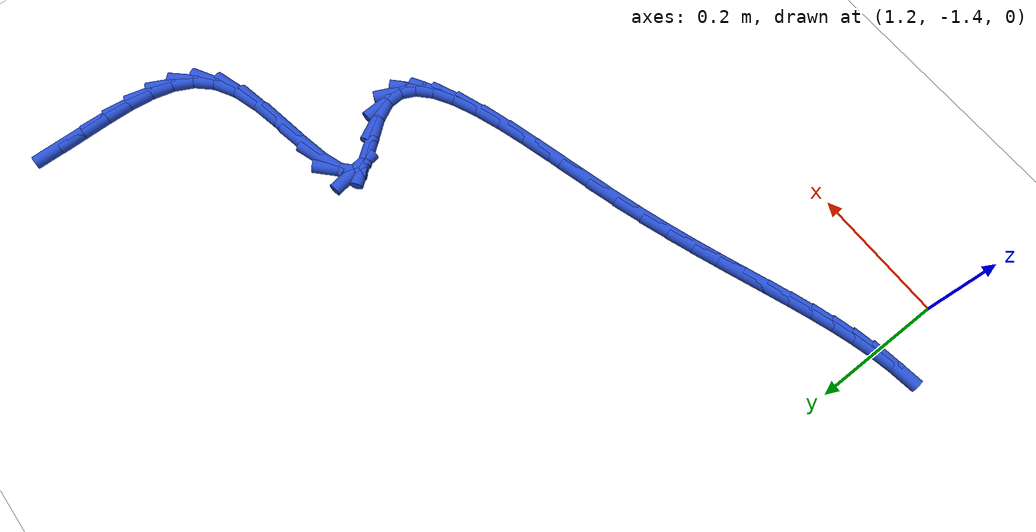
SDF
<sdf version="1.6">
 <world name="default">
  <model name="ground_plane">
   <static>1</static>
   <link name="link">
    <collision name="collision">
     <geometry><plane><normal>0 0 1</normal><size>100 100</size></plane></geometry>
     <surface><friction><ode><mu>100</mu><mu2>50</mu2></ode></friction></surface>
    </collision>
    <visual name="visual">
     <cast_shadows>0</cast_shadows>
     <geometry><plane><normal>0 0 1</normal><size>100 100</size></plane></geometry>
     <material>
      <script><uri>file://media/materials/scripts/gazebo.material</uri><name>Gazebo/WhiteGlow</name></script>
     </material>
    </visual>
   </link>
  </model>
  <model name="line">
   <link name="link_143">
    <pose>2.1452054644386993 -0.5556848720002441 0.01 0 1.57 -1.5676924518721604</pose>
    <collision name="collision">
     <geometry><cylinder><radius>0.01</radius><length>0.08</length></cylinder></geometry>
    </collision>
    <visual name="visual">
     <material>
      <script><name>Gazebo/Blue</name><uri>file://media/materials/scripts/gazebo.material</uri></script>
     </material>
     <geometry><cylinder><radius>0.01</radius><length>0.08</length></cylinder></geometry>
    </visual>
   </link>
   <link name="link_144">
    <pose>2.145331427552419 -0.5962672770080758 0.01 0 1.57 -1.5576313971870508</pose>
    <collision name="collision">
     <geometry><cylinder><radius>0.01</radius><length>0.08</length></cylinder></geometry>
    </collision>
    <visual name="visual">
     <material>
      <script><name>Gazebo/Blue</name><uri>file://media/materials/scripts/gazebo.material</uri></script>
     </material>
     <geometry><cylinder><radius>0.01</radius><length>0.08</length></cylinder></geometry>
    </visual>
   </link>
   <link name="link_145">
    <pose>2.1458559472950824 -0.6361071740293356 0.01 0 1.57 1.552144078767067</pose>
    <collision name="collision">
     <geometry><cylinder><radius>0.01</radius><length>0.08</length></cylinder></geometry>
    </collision>
    <visual name="visual">
     <material>
      <script><name>Gazebo/Blue</name><uri>file://media/materials/scripts/gazebo.material</uri></script>
     </material>
     <geometry><cylinder><radius>0.01</radius><length>0.08</length></cylinder></geometry>
    </visual>
   </link>
   <link name="link_146">
    <pose>2.145141589662102 -0.6744014743627922 0.01 0 1.57 1.4712348913628255</pose>
    <collision name="collision">
     <geometry><cylinder><radius>0.01</radius><length>0.08</length></cylinder></geometry>
    </collision>
    <visual name="visual">
     <material>
      <script><name>Gazebo/Blue</name><uri>file://media/materials/scripts/gazebo.material</uri></script>
     </material>
     <geometry><cylinder><radius>0.01</radius><length>0.08</length></cylinder></geometry>
    </visual>
   </link>
   <link name="link_147">
    <pose>2.141550920648893 -0.7103470893072168 0.01 0 1.57 1.328518575122831</pose>
    <collision name="collision">
     <geometry><cylinder><radius>0.01</radius><length>0.08</length></cylinder></geometry>
    </collision>
    <visual name="visual">
     <material>
      <script><name>Gazebo/Blue</name><uri>file://media/materials/scripts/gazebo.material</uri></script>
     </material>
     <geometry><cylinder><radius>0.01</radius><length>0.08</length></cylinder></geometry>
    </visual>
   </link>
   <link name="link_148">
    <pose>2.1334465062508694 -0.7431409301613764 0.01 0 1.57 1.1117055375172582</pose>
    <collision name="collision">
     <geometry><cylinder><radius>0.01</radius><length>0.08</length></cylinder></geometry>
    </collision>
    <visual name="visual">
     <material>
      <script><name>Gazebo/Blue</name><uri>file://media/materials/scripts/gazebo.material</uri></script>
     </material>
     <geometry><cylinder><radius>0.01</radius><length>0.08</length></cylinder></geometry>
    </visual>
   </link>
   <link name="link_149">
    <pose>2.119190912463445 -0.7719799082240418 0.01 0 1.57 0.8295279565214816</pose>
    <collision name="collision">
     <geometry><cylinder><radius>0.01</radius><length>0.08</length></cylinder></geometry>
    </collision>
    <visual name="visual">
     <material>
      <script><name>Gazebo/Blue</name><uri>file://media/materials/scripts/gazebo.material</uri></script>
     </material>
     <geometry><cylinder><radius>0.01</radius><length>0.08</length></cylinder></geometry>
    </visual>
   </link>
   <link name="link_150">
    <pose>2.097146705282034 -0.7960609347939829 0.01 0 1.57 0.5326238559644626</pose>
    <collision name="collision">
     <geometry><cylinder><radius>0.01</radius><length>0.08</length></cylinder></geometry>
    </collision>
    <visual name="visual">
     <material>
      <script><name>Gazebo/Blue</name><uri>file://media/materials/scripts/gazebo.material</uri></script>
     </material>
     <geometry><cylinder><radius>0.01</radius><length>0.08</length></cylinder></geometry>
    </visual>
   </link>
   <link name="link_151">
    <pose>2.065705797096419 -0.8145936860053105 0.01 0 1.57 0.3161960315604046</pose>
    <collision name="collision">
     <geometry><cylinder><radius>0.01</radius><length>0.08</length></cylinder></geometry>
    </collision>
    <visual name="visual">
     <material>
      <script><name>Gazebo/Blue</name><uri>file://media/materials/scripts/gazebo.material</uri></script>
     </material>
     <geometry><cylinder><radius>0.01</radius><length>0.08</length></cylinder></geometry>
    </visual>
   </link>
   <link name="link_152">
    <pose>2.0254813773221056 -0.8277540294474061 0.01 0 1.57 0.21152568492663076</pose>
    <collision name="collision">
     <geometry><cylinder><radius>0.01</radius><length>0.08</length></cylinder></geometry>
    </collision>
    <visual name="visual">
     <material>
      <script><name>Gazebo/Blue</name><uri>file://media/materials/scripts/gazebo.material</uri></script>
     </material>
     <geometry><cylinder><radius>0.01</radius><length>0.08</length></cylinder></geometry>
    </visual>
   </link>
   <link name="link_153">
    <pose>1.9808242847953934 -0.8373436024319085 0.01 0 1.57 0.17783030648084885</pose>
    <collision name="collision">
     <geometry><cylinder><radius>0.01</radius><length>0.08</length></cylinder></geometry>
    </collision>
    <visual name="visual">
     <material>
      <script><name>Gazebo/Blue</name><uri>file://media/materials/scripts/gazebo.material</uri></script>
     </material>
     <geometry><cylinder><radius>0.01</radius><length>0.08</length></cylinder></geometry>
    </visual>
   </link>
   <link name="link_154">
    <pose>1.9364439673050313 -0.8453200268242196 0.01 0 1.57 0.20816224838742683</pose>
    <collision name="collision">
     <geometry><cylinder><radius>0.01</radius><length>0.08</length></cylinder></geometry>
    </collision>
    <visual name="visual">
     <material>
      <script><name>Gazebo/Blue</name><uri>file://media/materials/scripts/gazebo.material</uri></script>
     </material>
     <geometry><cylinder><radius>0.01</radius><length>0.08</length></cylinder></geometry>
    </visual>
   </link>
   <link name="link_155">
    <pose>1.8970498726397707 -0.853640924489742 0.01 0 1.57 0.3435139861904821</pose>
    <collision name="collision">
     <geometry><cylinder><radius>0.01</radius><length>0.08</length></cylinder></geometry>
    </collision>
    <visual name="visual">
     <material>
      <script><name>Gazebo/Blue</name><uri>file://media/materials/scripts/gazebo.material</uri></script>
     </material>
     <geometry><cylinder><radius>0.01</radius><length>0.08</length></cylinder></geometry>
    </visual>
   </link>
   <link name="link_156">
    <pose>1.8673514485883655 -0.8642639172938782 0.01 0 1.57 0.7717923079617992</pose>
    <collision name="collision">
     <geometry><cylinder><radius>0.01</radius><length>0.08</length></cylinder></geometry>
    </collision>
    <visual name="visual">
     <material>
      <script><name>Gazebo/Blue</name><uri>file://media/materials/scripts/gazebo.material</uri></script>
     </material>
     <geometry><cylinder><radius>0.01</radius><length>0.08</length></cylinder></geometry>
    </visual>
   </link>
   <link name="link_157">
    <pose>1.8520581429395646 -0.8791466271020301 0.01 0 1.57 -1.3963980427650922</pose>
    <collision name="collision">
     <geometry><cylinder><radius>0.01</radius><length>0.08</length></cylinder></geometry>
    </collision>
    <visual name="visual">
     <material>
      <script><name>Gazebo/Blue</name><uri>file://media/materials/scripts/gazebo.material</uri></script>
     </material>
     <geometry><cylinder><radius>0.01</radius><length>0.08</length></cylinder></geometry>
    </visual>
   </link>
   <link name="link_158">
    <pose>1.855769472851111 -0.9002112093164588 0.01 0 1.57 -0.9222633837119028</pose>
    <collision name="collision">
     <geometry><cylinder><radius>0.01</radius><length>0.08</length></cylinder></geometry>
    </collision>
    <visual name="visual">
     <material>
      <script><name>Gazebo/Blue</name><uri>file://media/materials/scripts/gazebo.material</uri></script>
     </material>
     <geometry><cylinder><radius>0.01</radius><length>0.08</length></cylinder></geometry>
    </visual>
   </link>
   <link name="link_159">
    <pose>1.876190274886578 -0.9271554171603377 0.01 0 1.57 -0.8803049278841956</pose>
    <collision name="collision">
     <geometry><cylinder><radius>0.01</radius><length>0.08</length></cylinder></geometry>
    </collision>
    <visual name="visual">
     <material>
      <script><name>Gazebo/Blue</name><uri>file://media/materials/scripts/gazebo.material</uri></script>
     </material>
     <geometry><cylinder><radius>0.01</radius><length>0.08</length></cylinder></geometry>
    </visual>
   </link>
   <link name="link_160">
    <pose>1.9001631596155057 -0.9561725689753596 0.01 0 1.57 -1.082648267925943</pose>
    <collision name="collision">
     <geometry><cylinder><radius>0.01</radius><length>0.08</length></cylinder></geometry>
    </collision>
    <visual name="visual">
     <material>
      <script><name>Gazebo/Blue</name><uri>file://media/materials/scripts/gazebo.material</uri></script>
     </material>
     <geometry><cylinder><radius>0.01</radius><length>0.08</length></cylinder></geometry>
    </visual>
   </link>
   <link name="link_161">
    <pose>1.914649321750967 -0.9834528775230519 0.01 0 1.57 -1.5097833264019866</pose>
    <collision name="collision">
     <geometry><cylinder><radius>0.01</radius><length>0.08</length></cylinder></geometry>
    </collision>
    <visual name="visual">
     <material>
      <script><name>Gazebo/Blue</name><uri>file://media/materials/scripts/gazebo.material</uri></script>
     </material>
     <geometry><cylinder><radius>0.01</radius><length>0.08</length></cylinder></geometry>
    </visual>
   </link>
   <link name="link_162">
    <pose>1.9161424485824505 -1.0078947767487512 0.01 0 1.57 1.142109847355386</pose>
    <collision name="collision">
     <geometry><cylinder><radius>0.01</radius><length>0.08</length></cylinder></geometry>
    </collision>
    <visual name="visual">
     <material>
      <script><name>Gazebo/Blue</name><uri>file://media/materials/scripts/gazebo.material</uri></script>
     </material>
     <geometry><cylinder><radius>0.01</radius><length>0.08</length></cylinder></geometry>
    </visual>
   </link>
   <link name="link_163">
    <pose>1.9061246845527287 -1.0298139422298993 0.01 0 1.57 0.7783927689083727</pose>
    <collision name="collision">
     <geometry><cylinder><radius>0.01</radius><length>0.08</length></cylinder></geometry>
    </collision>
    <visual name="visual">
     <material>
      <script><name>Gazebo/Blue</name><uri>file://media/materials/scripts/gazebo.material</uri></script>
     </material>
     <geometry><cylinder><radius>0.01</radius><length>0.08</length></cylinder></geometry>
    </visual>
   </link>
   <link name="link_164">
    <pose>1.8861218565821913 -1.0495384599193263 0.01 0 1.57 0.5603448838079026</pose>
    <collision name="collision">
     <geometry><cylinder><radius>0.01</radius><length>0.08</length></cylinder></geometry>
    </collision>
    <visual name="visual">
     <material>
      <script><name>Gazebo/Blue</name><uri>file://media/materials/scripts/gazebo.material</uri></script>
     </material>
     <geometry><cylinder><radius>0.01</radius><length>0.08</length></cylinder></geometry>
    </visual>
   </link>
   <link name="link_165">
    <pose>1.857659791591229 -1.0673964157698614 0.01 0 1.57 0.4320142484201723</pose>
    <collision name="collision">
     <geometry><cylinder><radius>0.01</radius><length>0.08</length></cylinder></geometry>
    </collision>
    <visual name="visual">
     <material>
      <script><name>Gazebo/Blue</name><uri>file://media/materials/scripts/gazebo.material</uri></script>
     </material>
     <geometry><cylinder><radius>0.01</radius><length>0.08</length></cylinder></geometry>
    </visual>
   </link>
   <link name="link_166">
    <pose>1.8222643165002306 -1.0837158957343345 0.01 0 1.57 0.3546376813326017</pose>
    <collision name="collision">
     <geometry><cylinder><radius>0.01</radius><length>0.08</length></cylinder></geometry>
    </collision>
    <visual name="visual">
     <material>
      <script><name>Gazebo/Blue</name><uri>file://media/materials/scripts/gazebo.material</uri></script>
     </material>
     <geometry><cylinder><radius>0.01</radius><length>0.08</length></cylinder></geometry>
    </visual>
   </link>
   <link name="link_167">
    <pose>1.7814612582295875 -1.098824985765575 0.01 0 1.57 0.3082334403216166</pose>
    <collision name="collision">
     <geometry><cylinder><radius>0.01</radius><length>0.08</length></cylinder></geometry>
    </collision>
    <visual name="visual">
     <material>
      <script><name>Gazebo/Blue</name><uri>file://media/materials/scripts/gazebo.material</uri></script>
     </material>
     <geometry><cylinder><radius>0.01</radius><length>0.08</length></cylinder></geometry>
    </visual>
   </link>
   <link name="link_168">
    <pose>1.7367764436996898 -1.113051771816413 0.01 0 1.57 0.2828603397765931</pose>
    <collision name="collision">
     <geometry><cylinder><radius>0.01</radius><length>0.08</length></cylinder></geometry>
    </collision>
    <visual name="visual">
     <material>
      <script><name>Gazebo/Blue</name><uri>file://media/materials/scripts/gazebo.material</uri></script>
     </material>
     <geometry><cylinder><radius>0.01</radius><length>0.08</length></cylinder></geometry>
    </visual>
   </link>
   <link name="link_169">
    <pose>1.6897356998309274 -1.1267243398396778 0.01 0 1.57 0.27383369153541937</pose>
    <collision name="collision">
     <geometry><cylinder><radius>0.01</radius><length>0.08</length></cylinder></geometry>
    </collision>
    <visual name="visual">
     <material>
      <script><name>Gazebo/Blue</name><uri>file://media/materials/scripts/gazebo.material</uri></script>
     </material>
     <geometry><cylinder><radius>0.01</radius><length>0.08</length></cylinder></geometry>
    </visual>
   </link>
   <link name="link_170">
    <pose>1.6418648535436895 -1.1401707757881991 0.01 0 1.57 0.2796667286148852</pose>
    <collision name="collision">
     <geometry><cylinder><radius>0.01</radius><length>0.08</length></cylinder></geometry>
    </collision>
    <visual name="visual">
     <material>
      <script><name>Gazebo/Blue</name><uri>file://media/materials/scripts/gazebo.material</uri></script>
     </material>
     <geometry><cylinder><radius>0.01</radius><length>0.08</length></cylinder></geometry>
    </visual>
   </link>
   <link name="link_171">
    <pose>1.5946897317583681 -1.1537191656148058 0.01 0 1.57 0.30029425044246977</pose>
    <collision name="collision">
     <geometry><cylinder><radius>0.01</radius><length>0.08</length></cylinder></geometry>
    </collision>
    <visual name="visual">
     <material>
      <script><name>Gazebo/Blue</name><uri>file://media/materials/scripts/gazebo.material</uri></script>
     </material>
     <geometry><cylinder><radius>0.01</radius><length>0.08</length></cylinder></geometry>
    </visual>
   </link>
   <link name="link_172">
    <pose>1.549642699509388 -1.1676683704254396 0.01 0 1.57 0.32516745071099723</pose>
    <collision name="collision">
     <geometry><cylinder><radius>0.01</radius><length>0.08</length></cylinder></geometry>
    </collision>
    <visual name="visual">
     <material>
      <script><name>Gazebo/Blue</name><uri>file://media/materials/scripts/gazebo.material</uri></script>
     </material>
     <geometry><cylinder><radius>0.01</radius><length>0.08</length></cylinder></geometry>
    </visual>
   </link>
   <link name="link_173">
    <pose>1.5071368726532102 -1.1819985395767567 0.01 0 1.57 0.3462376723514335</pose>
    <collision name="collision">
     <geometry><cylinder><radius>0.01</radius><length>0.08</length></cylinder></geometry>
    </collision>
    <visual name="visual">
     <material>
      <script><name>Gazebo/Blue</name><uri>file://media/materials/scripts/gazebo.material</uri></script>
     </material>
     <geometry><cylinder><radius>0.01</radius><length>0.08</length></cylinder></geometry>
    </visual>
   </link>
   <link name="link_174">
    <pose>1.4669583703949243 -1.196493765166919 0.01 0 1.57 0.362534279356558</pose>
    <collision name="collision">
     <geometry><cylinder><radius>0.01</radius><length>0.08</length></cylinder></geometry>
    </collision>
    <visual name="visual">
     <material>
      <script><name>Gazebo/Blue</name><uri>file://media/materials/scripts/gazebo.material</uri></script>
     </material>
     <geometry><cylinder><radius>0.01</radius><length>0.08</length></cylinder></geometry>
    </visual>
   </link>
   <link name="link_175">
    <pose>1.4288841539366044 -1.2109352756536509 0.01 0 1.57 0.3731448359637402</pose>
    <collision name="collision">
     <geometry><cylinder><radius>0.01</radius><length>0.08</length></cylinder></geometry>
    </collision>
    <visual name="visual">
     <material>
      <script><name>Gazebo/Blue</name><uri>file://media/materials/scripts/gazebo.material</uri></script>
     </material>
     <geometry><cylinder><radius>0.01</radius><length>0.08</length></cylinder></geometry>
    </visual>
   </link>
   <link name="link_176">
    <pose>1.392691184480327 -1.2251042994946788 0.01 0 1.57 0.37710341822719023</pose>
    <collision name="collision">
     <geometry><cylinder><radius>0.01</radius><length>0.08</length></cylinder></geometry>
    </collision>
    <visual name="visual">
     <material>
      <script><name>Gazebo/Blue</name><uri>file://media/materials/scripts/gazebo.material</uri></script>
     </material>
     <geometry><cylinder><radius>0.01</radius><length>0.08</length></cylinder></geometry>
    </visual>
   </link>
   <link name="link_177">
    <pose>1.3581564232281647 -1.2387820651477277 0.01 0 1.57 0.37339956632512744</pose>
    <collision name="collision">
     <geometry><cylinder><radius>0.01</radius><length>0.08</length></cylinder></geometry>
    </collision>
    <visual name="visual">
     <material>
      <script><name>Gazebo/Blue</name><uri>file://media/materials/scripts/gazebo.material</uri></script>
     </material>
     <geometry><cylinder><radius>0.01</radius><length>0.08</length></cylinder></geometry>
    </visual>
   </link>
   <link name="link_178">
    <pose>1.3250568313821944 -1.2517498010705226 0.01 0 1.57 0.3609995701709183</pose>
    <collision name="collision">
     <geometry><cylinder><radius>0.01</radius><length>0.08</length></cylinder></geometry>
    </collision>
    <visual name="visual">
     <material>
      <script><name>Gazebo/Blue</name><uri>file://media/materials/scripts/gazebo.material</uri></script>
     </material>
     <geometry><cylinder><radius>0.01</radius><length>0.08</length></cylinder></geometry>
    </visual>
   </link>
   <link name="link_179">
    <pose>1.2931693701444908 -1.2637887357207895 0.01 0 1.57 0.33889123087839995</pose>
    <collision name="collision">
     <geometry><cylinder><radius>0.01</radius><length>0.08</length></cylinder></geometry>
    </collision>
    <visual name="visual">
     <material>
      <script><name>Gazebo/Blue</name><uri>file://media/materials/scripts/gazebo.material</uri></script>
     </material>
     <geometry><cylinder><radius>0.01</radius><length>0.08</length></cylinder></geometry>
    </visual>
   </link>
   <link name="link_180">
    <pose>1.262271000717127 -1.2746800975562524 0.01 0 1.57 0.3061670148606833</pose>
    <collision name="collision">
     <geometry><cylinder><radius>0.01</radius><length>0.08</length></cylinder></geometry>
    </collision>
    <visual name="visual">
     <material>
      <script><name>Gazebo/Blue</name><uri>file://media/materials/scripts/gazebo.material</uri></script>
     </material>
     <geometry><cylinder><radius>0.01</radius><length>0.08</length></cylinder></geometry>
    </visual>
   </link>
   <link name="link_181">
    <pose>1.232138684302179 -1.2842051150346379 0.01 0 1.57 0.26216108734205334</pose>
    <collision name="collision">
     <geometry><cylinder><radius>0.01</radius><length>0.08</length></cylinder></geometry>
    </collision>
    <visual name="visual">
     <material>
      <script><name>Gazebo/Blue</name><uri>file://media/materials/scripts/gazebo.material</uri></script>
     </material>
     <geometry><cylinder><radius>0.01</radius><length>0.08</length></cylinder></geometry>
    </visual>
   </link>
   <link name="link_182">
    <pose>1.202549382101721 -1.2921450166136708 0.01 0 1.57 0.20664712828500012</pose>
    <collision name="collision">
     <geometry><cylinder><radius>0.01</radius><length>0.08</length></cylinder></geometry>
    </collision>
    <visual name="visual">
     <material>
      <script><name>Gazebo/Blue</name><uri>file://media/materials/scripts/gazebo.material</uri></script>
     </material>
     <geometry><cylinder><radius>0.01</radius><length>0.08</length></cylinder></geometry>
    </visual>
   </link>
   <link name="link_183">
    <pose>1.1732800553178278 -1.2982810307510761 0.01 0 1.57 0.14007820132118182</pose>
    <collision name="collision">
     <geometry><cylinder><radius>0.01</radius><length>0.08</length></cylinder></geometry>
    </collision>
    <visual name="visual">
     <material>
      <script><name>Gazebo/Blue</name><uri>file://media/materials/scripts/gazebo.material</uri></script>
     </material>
     <geometry><cylinder><radius>0.01</radius><length>0.08</length></cylinder></geometry>
    </visual>
   </link>
  </model>
 </world>
</sdf>
